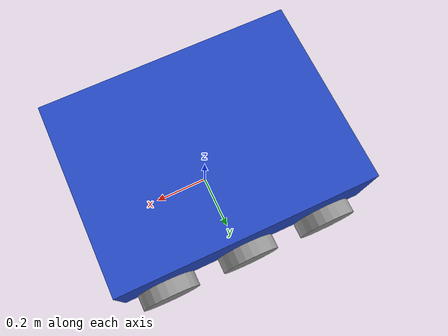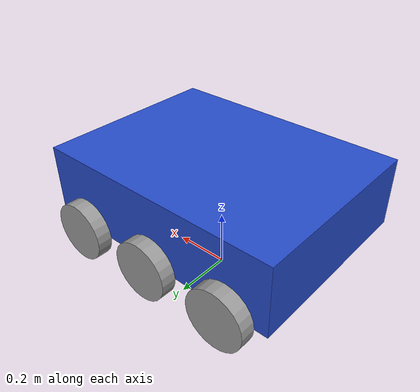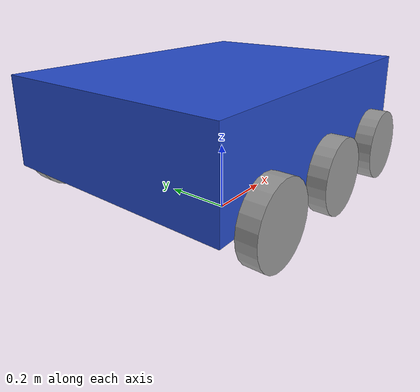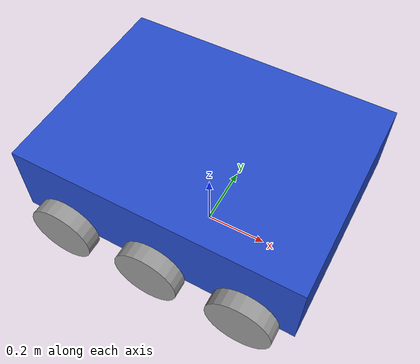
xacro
<?xml version="1.0"?>
<robot xmlns:xacro="http://www.ros.org/wiki/xacro">

    <xacro:property name="base_length" value="0.865" />
    <xacro:property name="base_width" value="0.645" />
    <xacro:property name="base_height" value="0.24" />
    <xacro:property name="wheel_radius" value="0.1" />
    <xacro:property name="wheel_length" value="0.05" />

    <link name="base_footprint" />

    <link name="base_link">
        <visual>
            <geometry>
                <box size="${base_length} ${base_width} ${base_height}" />
            </geometry>
            <origin xyz="0 0 ${base_height / 2.0}" rpy="0 0 0" />
            <material name="blue" />
        </visual>
    </link>

    <xacro:macro name="wheel_link" params="prefix">
        <link name="${prefix}_wheel_link">
            <visual>
                <geometry>
                    <cylinder radius="${wheel_radius}" length="${wheel_length}" />
                </geometry>
                <origin xyz="0 0 0" rpy="${pi / 2.0} 0 0" />
                <material name="grey" />
            </visual>
        </link>
    </xacro:macro>

    <xacro:wheel_link prefix="front_right" />
    <xacro:wheel_link prefix="middle_right" />
    <xacro:wheel_link prefix="back_right" />
    <xacro:wheel_link prefix="front_left" />
    <xacro:wheel_link prefix="middle_left" />
    <xacro:wheel_link prefix="back_left" />

    <joint name="base_joint" type="fixed">
        <parent link="base_footprint" />
        <child link="base_link" />
        <origin xyz="0 0 ${wheel_radius * 2}" rpy="0 0 0"/>
    </joint>

    <joint name="base_front_right_wheel_joint" type="continuous">
        <parent link="base_link" />
        <child link="front_right_wheel_link" />
	<origin xyz="${base_length / 3.0} ${-(base_width + wheel_length) / 2.0} 0" rpy="0 0 0" />
        <axis xyz="0 1 0" />
    </joint>

    <joint name="base_middle_right_wheel_joint" type="continuous">
        <parent link="base_link" />
        <child link="middle_right_wheel_link" />
	<origin xyz="0 ${-(base_width + wheel_length) / 2.0} 0" rpy="0 0 0" />
        <axis xyz="0 1 0" />
    </joint>

    <joint name="base_back_right_wheel_joint" type="continuous">
        <parent link="base_link" />
        <child link="back_right_wheel_link" />
	<origin xyz="${-base_length / 3.0} ${-(base_width + wheel_length) / 2.0} 0" rpy="0 0 0" />
        <axis xyz="0 1 0" />
    </joint>

    <joint name="base_front_left_wheel_joint" type="continuous">
        <parent link="base_link" />
        <child link="front_left_wheel_link" />
	<origin xyz="${base_length / 3.0} ${(base_width + wheel_length) / 2.0} 0" rpy="0 0 0" />
        <axis xyz="0 1 0" />
    </joint>

    <joint name="base_middle_left_wheel_joint" type="continuous">
        <parent link="base_link" />
        <child link="middle_left_wheel_link" />
	<origin xyz="0 ${(base_width + wheel_length) / 2.0} 0" rpy="0 0 0" />
        <axis xyz="0 1 0" />
    </joint>

    <joint name="base_back_left_wheel_joint" type="continuous">
        <parent link="base_link" />
        <child link="back_left_wheel_link" />
	<origin xyz="${-base_length / 3.0} ${(base_width + wheel_length) / 2.0} 0" rpy="0 0 0" />
        <axis xyz="0 1 0" />
    </joint>

</robot>
